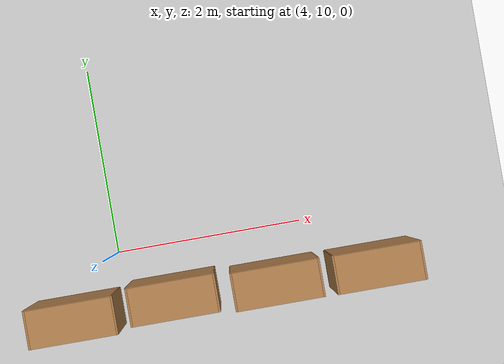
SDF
<sdf version="1.6">
 <world name="default">
  <model name="ground_plane">
   <static>1</static>
   <link name="link">
    <collision name="collision">
     <geometry><plane><normal>0 0 1</normal><size>100 100</size></plane></geometry>
     <surface><friction><ode><mu>100</mu><mu2>50</mu2></ode></friction></surface>
    </collision>
    <visual name="visual">
     <cast_shadows>0</cast_shadows>
     <geometry><plane><normal>0 0 1</normal><size>100 100</size></plane></geometry>
     <material>
      <script><uri>file://media/materials/scripts/gazebo.material</uri><name>Gazebo/Grey</name></script>
     </material>
    </visual>
   </link>
  </model>
  <model name="bookshelf">
   <static>1</static>
   <link name="link">
    <inertial><mass>1</mass></inertial>
    <collision name="back">
     <pose>0 0.005 0.6 0 -0 0</pose>
     <geometry><box><size>0.9 0.01 1.2</size></box></geometry>
    </collision>
    <visual name="visual1">
     <pose>0 0.005 0.6 0 -0 0</pose>
     <geometry><box><size>0.9 0.01 1.2</size></box></geometry>
     <material>
      <script><uri>file://media/materials/scripts/gazebo.material</uri><name>Gazebo/Wood</name></script>
     </material>
    </visual>
    <collision name="left_side">
     <pose>0.45 -0.195 0.6 0 -0 0</pose>
     <geometry><box><size>0.02 0.4 1.2</size></box></geometry>
    </collision>
    <visual name="visual2">
     <pose>0.45 -0.195 0.6 0 -0 0</pose>
     <geometry><box><size>0.02 0.4 1.2</size></box></geometry>
     <material>
      <script><uri>file://media/materials/scripts/gazebo.material</uri><name>Gazebo/Wood</name></script>
     </material>
    </visual>
    <collision name="right_side">
     <pose>-0.45 -0.195 0.6 0 -0 0</pose>
     <geometry><box><size>0.02 0.4 1.2</size></box></geometry>
    </collision>
    <visual name="visual3">
     <pose>-0.45 -0.195 0.6 0 -0 0</pose>
     <geometry><box><size>0.02 0.4 1.2</size></box></geometry>
     <material>
      <script><uri>file://media/materials/scripts/gazebo.material</uri><name>Gazebo/Wood</name></script>
     </material>
    </visual>
    <collision name="bottom">
     <pose>0 -0.195 0.03 0 -0 0</pose>
     <geometry><box><size>0.88 0.4 0.06</size></box></geometry>
    </collision>
    <visual name="visual4">
     <pose>0 -0.195 0.03 0 -0 0</pose>
     <geometry><box><size>0.88 0.4 0.06</size></box></geometry>
     <material>
      <script><uri>file://media/materials/scripts/gazebo.material</uri><name>Gazebo/Wood</name></script>
     </material>
    </visual>
    <collision name="top">
     <pose>0 -0.195 1.19 0 -0 0</pose>
     <geometry><box><size>0.88 0.4 0.02</size></box></geometry>
    </collision>
    <visual name="visual5">
     <pose>0 -0.195 1.19 0 -0 0</pose>
     <geometry><box><size>0.88 0.4 0.02</size></box></geometry>
     <material>
      <script><uri>file://media/materials/scripts/gazebo.material</uri><name>Gazebo/Wood</name></script>
     </material>
    </visual>
    <collision name="low_shelf">
     <pose>0 -0.195 0.43 0 -0 0</pose>
     <geometry><box><size>0.88 0.4 0.02</size></box></geometry>
    </collision>
    <visual name="visual6">
     <pose>0 -0.195 0.43 0 -0 0</pose>
     <geometry><box><size>0.88 0.4 0.02</size></box></geometry>
     <material>
      <script><uri>file://media/materials/scripts/gazebo.material</uri><name>Gazebo/Wood</name></script>
     </material>
    </visual>
    <collision name="high_shelf">
     <pose>0 -0.195 0.8 0 -0 0</pose>
     <geometry><box><size>0.88 0.4 0.02</size></box></geometry>
    </collision>
    <visual name="visual7">
     <pose>0 -0.195 0.8 0 -0 0</pose>
     <geometry><box><size>0.88 0.4 0.02</size></box></geometry>
     <material>
      <script><uri>file://media/materials/scripts/gazebo.material</uri><name>Gazebo/Wood</name></script>
     </material>
    </visual>
   </link>
   <pose>3.49368 9.61547 0 0 -0 0</pose>
  </model>
  <model name="bookshelf_clone">
   <static>1</static>
   <link name="link">
    <inertial><mass>1</mass></inertial>
    <collision name="back">
     <pose>0 0.005 0.6 0 -0 0</pose>
     <geometry><box><size>0.9 0.01 1.2</size></box></geometry>
    </collision>
    <visual name="visual1">
     <pose>0 0.005 0.6 0 -0 0</pose>
     <geometry><box><size>0.9 0.01 1.2</size></box></geometry>
     <material>
      <script><uri>file://media/materials/scripts/gazebo.material</uri><name>Gazebo/Wood</name></script>
     </material>
    </visual>
    <collision name="left_side">
     <pose>0.45 -0.195 0.6 0 -0 0</pose>
     <geometry><box><size>0.02 0.4 1.2</size></box></geometry>
    </collision>
    <visual name="visual2">
     <pose>0.45 -0.195 0.6 0 -0 0</pose>
     <geometry><box><size>0.02 0.4 1.2</size></box></geometry>
     <material>
      <script><uri>file://media/materials/scripts/gazebo.material</uri><name>Gazebo/Wood</name></script>
     </material>
    </visual>
    <collision name="right_side">
     <pose>-0.45 -0.195 0.6 0 -0 0</pose>
     <geometry><box><size>0.02 0.4 1.2</size></box></geometry>
    </collision>
    <visual name="visual3">
     <pose>-0.45 -0.195 0.6 0 -0 0</pose>
     <geometry><box><size>0.02 0.4 1.2</size></box></geometry>
     <material>
      <script><uri>file://media/materials/scripts/gazebo.material</uri><name>Gazebo/Wood</name></script>
     </material>
    </visual>
    <collision name="bottom">
     <pose>0 -0.195 0.03 0 -0 0</pose>
     <geometry><box><size>0.88 0.4 0.06</size></box></geometry>
    </collision>
    <visual name="visual4">
     <pose>0 -0.195 0.03 0 -0 0</pose>
     <geometry><box><size>0.88 0.4 0.06</size></box></geometry>
     <material>
      <script><uri>file://media/materials/scripts/gazebo.material</uri><name>Gazebo/Wood</name></script>
     </material>
    </visual>
    <collision name="top">
     <pose>0 -0.195 1.19 0 -0 0</pose>
     <geometry><box><size>0.88 0.4 0.02</size></box></geometry>
    </collision>
    <visual name="visual5">
     <pose>0 -0.195 1.19 0 -0 0</pose>
     <geometry><box><size>0.88 0.4 0.02</size></box></geometry>
     <material>
      <script><uri>file://media/materials/scripts/gazebo.material</uri><name>Gazebo/Wood</name></script>
     </material>
    </visual>
    <collision name="low_shelf">
     <pose>0 -0.195 0.43 0 -0 0</pose>
     <geometry><box><size>0.88 0.4 0.02</size></box></geometry>
    </collision>
    <visual name="visual6">
     <pose>0 -0.195 0.43 0 -0 0</pose>
     <geometry><box><size>0.88 0.4 0.02</size></box></geometry>
     <material>
      <script><uri>file://media/materials/scripts/gazebo.material</uri><name>Gazebo/Wood</name></script>
     </material>
    </visual>
    <collision name="high_shelf">
     <pose>0 -0.195 0.8 0 -0 0</pose>
     <geometry><box><size>0.88 0.4 0.02</size></box></geometry>
    </collision>
    <visual name="visual7">
     <pose>0 -0.195 0.8 0 -0 0</pose>
     <geometry><box><size>0.88 0.4 0.02</size></box></geometry>
     <material>
      <script><uri>file://media/materials/scripts/gazebo.material</uri><name>Gazebo/Wood</name></script>
     </material>
    </visual>
   </link>
   <pose>4.54936 9.66295 0 0 -0 0</pose>
  </model>
  <model name="bookshelf_clone_0">
   <static>1</static>
   <link name="link">
    <inertial><mass>1</mass></inertial>
    <collision name="back">
     <pose>0 0.005 0.6 0 -0 0</pose>
     <geometry><box><size>0.9 0.01 1.2</size></box></geometry>
    </collision>
    <visual name="visual1">
     <pose>0 0.005 0.6 0 -0 0</pose>
     <geometry><box><size>0.9 0.01 1.2</size></box></geometry>
     <material>
      <script><uri>file://media/materials/scripts/gazebo.material</uri><name>Gazebo/Wood</name></script>
     </material>
    </visual>
    <collision name="left_side">
     <pose>0.45 -0.195 0.6 0 -0 0</pose>
     <geometry><box><size>0.02 0.4 1.2</size></box></geometry>
    </collision>
    <visual name="visual2">
     <pose>0.45 -0.195 0.6 0 -0 0</pose>
     <geometry><box><size>0.02 0.4 1.2</size></box></geometry>
     <material>
      <script><uri>file://media/materials/scripts/gazebo.material</uri><name>Gazebo/Wood</name></script>
     </material>
    </visual>
    <collision name="right_side">
     <pose>-0.45 -0.195 0.6 0 -0 0</pose>
     <geometry><box><size>0.02 0.4 1.2</size></box></geometry>
    </collision>
    <visual name="visual3">
     <pose>-0.45 -0.195 0.6 0 -0 0</pose>
     <geometry><box><size>0.02 0.4 1.2</size></box></geometry>
     <material>
      <script><uri>file://media/materials/scripts/gazebo.material</uri><name>Gazebo/Wood</name></script>
     </material>
    </visual>
    <collision name="bottom">
     <pose>0 -0.195 0.03 0 -0 0</pose>
     <geometry><box><size>0.88 0.4 0.06</size></box></geometry>
    </collision>
    <visual name="visual4">
     <pose>0 -0.195 0.03 0 -0 0</pose>
     <geometry><box><size>0.88 0.4 0.06</size></box></geometry>
     <material>
      <script><uri>file://media/materials/scripts/gazebo.material</uri><name>Gazebo/Wood</name></script>
     </material>
    </visual>
    <collision name="top">
     <pose>0 -0.195 1.19 0 -0 0</pose>
     <geometry><box><size>0.88 0.4 0.02</size></box></geometry>
    </collision>
    <visual name="visual5">
     <pose>0 -0.195 1.19 0 -0 0</pose>
     <geometry><box><size>0.88 0.4 0.02</size></box></geometry>
     <material>
      <script><uri>file://media/materials/scripts/gazebo.material</uri><name>Gazebo/Wood</name></script>
     </material>
    </visual>
    <collision name="low_shelf">
     <pose>0 -0.195 0.43 0 -0 0</pose>
     <geometry><box><size>0.88 0.4 0.02</size></box></geometry>
    </collision>
    <visual name="visual6">
     <pose>0 -0.195 0.43 0 -0 0</pose>
     <geometry><box><size>0.88 0.4 0.02</size></box></geometry>
     <material>
      <script><uri>file://media/materials/scripts/gazebo.material</uri><name>Gazebo/Wood</name></script>
     </material>
    </visual>
    <collision name="high_shelf">
     <pose>0 -0.195 0.8 0 -0 0</pose>
     <geometry><box><size>0.88 0.4 0.02</size></box></geometry>
    </collision>
    <visual name="visual7">
     <pose>0 -0.195 0.8 0 -0 0</pose>
     <geometry><box><size>0.88 0.4 0.02</size></box></geometry>
     <material>
      <script><uri>file://media/materials/scripts/gazebo.material</uri><name>Gazebo/Wood</name></script>
     </material>
    </visual>
   </link>
   <pose>5.61977 9.63241 0 0 -0 0</pose>
  </model>
  <model name="bookshelf_clone_1">
   <static>1</static>
   <link name="link">
    <inertial><mass>1</mass></inertial>
    <collision name="back">
     <pose>0 0.005 0.6 0 -0 0</pose>
     <geometry><box><size>0.9 0.01 1.2</size></box></geometry>
    </collision>
    <visual name="visual1">
     <pose>0 0.005 0.6 0 -0 0</pose>
     <geometry><box><size>0.9 0.01 1.2</size></box></geometry>
     <material>
      <script><uri>file://media/materials/scripts/gazebo.material</uri><name>Gazebo/Wood</name></script>
     </material>
    </visual>
    <collision name="left_side">
     <pose>0.45 -0.195 0.6 0 -0 0</pose>
     <geometry><box><size>0.02 0.4 1.2</size></box></geometry>
    </collision>
    <visual name="visual2">
     <pose>0.45 -0.195 0.6 0 -0 0</pose>
     <geometry><box><size>0.02 0.4 1.2</size></box></geometry>
     <material>
      <script><uri>file://media/materials/scripts/gazebo.material</uri><name>Gazebo/Wood</name></script>
     </material>
    </visual>
    <collision name="right_side">
     <pose>-0.45 -0.195 0.6 0 -0 0</pose>
     <geometry><box><size>0.02 0.4 1.2</size></box></geometry>
    </collision>
    <visual name="visual3">
     <pose>-0.45 -0.195 0.6 0 -0 0</pose>
     <geometry><box><size>0.02 0.4 1.2</size></box></geometry>
     <material>
      <script><uri>file://media/materials/scripts/gazebo.material</uri><name>Gazebo/Wood</name></script>
     </material>
    </visual>
    <collision name="bottom">
     <pose>0 -0.195 0.03 0 -0 0</pose>
     <geometry><box><size>0.88 0.4 0.06</size></box></geometry>
    </collision>
    <visual name="visual4">
     <pose>0 -0.195 0.03 0 -0 0</pose>
     <geometry><box><size>0.88 0.4 0.06</size></box></geometry>
     <material>
      <script><uri>file://media/materials/scripts/gazebo.material</uri><name>Gazebo/Wood</name></script>
     </material>
    </visual>
    <collision name="top">
     <pose>0 -0.195 1.19 0 -0 0</pose>
     <geometry><box><size>0.88 0.4 0.02</size></box></geometry>
    </collision>
    <visual name="visual5">
     <pose>0 -0.195 1.19 0 -0 0</pose>
     <geometry><box><size>0.88 0.4 0.02</size></box></geometry>
     <material>
      <script><uri>file://media/materials/scripts/gazebo.material</uri><name>Gazebo/Wood</name></script>
     </material>
    </visual>
    <collision name="low_shelf">
     <pose>0 -0.195 0.43 0 -0 0</pose>
     <geometry><box><size>0.88 0.4 0.02</size></box></geometry>
    </collision>
    <visual name="visual6">
     <pose>0 -0.195 0.43 0 -0 0</pose>
     <geometry><box><size>0.88 0.4 0.02</size></box></geometry>
     <material>
      <script><uri>file://media/materials/scripts/gazebo.material</uri><name>Gazebo/Wood</name></script>
     </material>
    </visual>
    <collision name="high_shelf">
     <pose>0 -0.195 0.8 0 -0 0</pose>
     <geometry><box><size>0.88 0.4 0.02</size></box></geometry>
    </collision>
    <visual name="visual7">
     <pose>0 -0.195 0.8 0 -0 0</pose>
     <geometry><box><size>0.88 0.4 0.02</size></box></geometry>
     <material>
      <script><uri>file://media/materials/scripts/gazebo.material</uri><name>Gazebo/Wood</name></script>
     </material>
    </visual>
   </link>
   <pose>6.6652 9.627 0 0 -0 0</pose>
  </model>
 </world>
</sdf>
